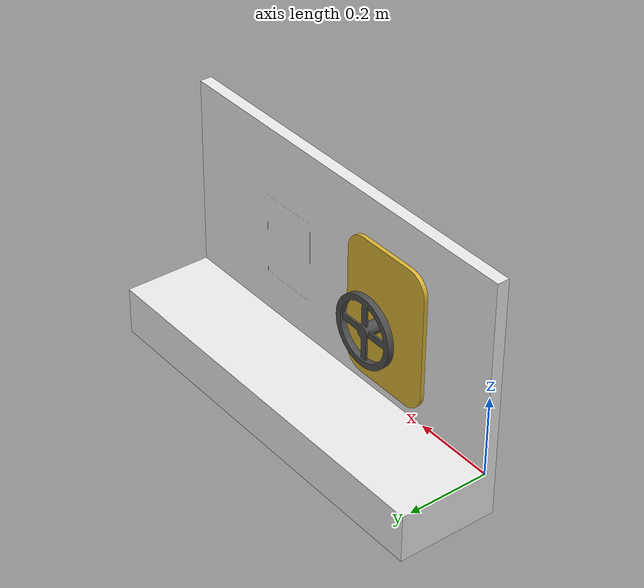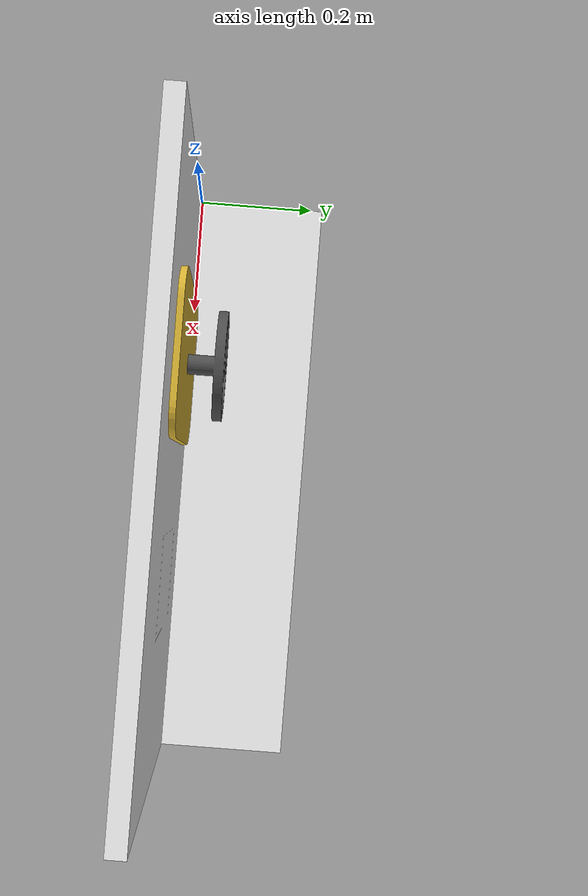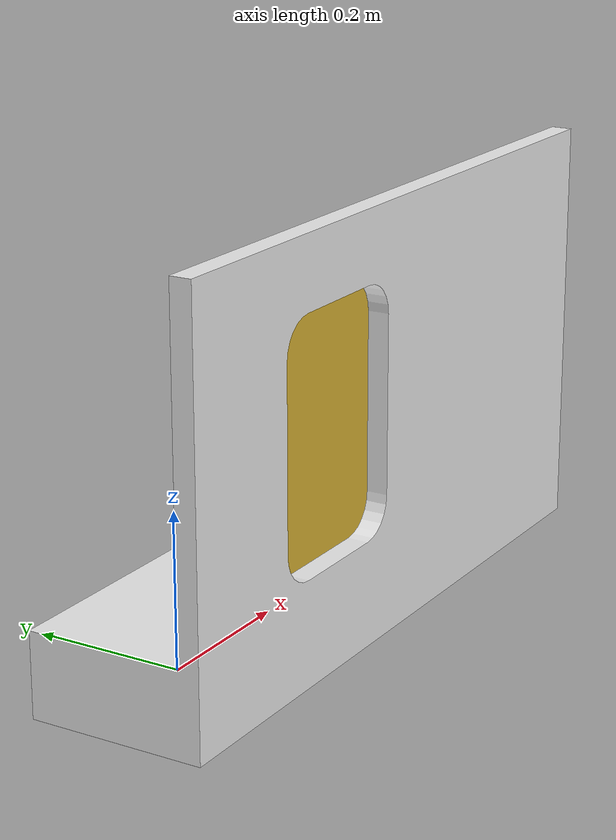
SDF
<?xml version="1.0"?>
<sdf version="1.7">
  <model name="iva_panel">

    <link name="station">
      <pose>0.0 0.0 0.0 0.0 0.0 0.0</pose>
      <inertial>
        <mass>100.0</mass>
        <pose>0.0 0.0 0.0 0.0 0.0 0.0</pose>
        <inertia>
          <ixx>1.0</ixx>
          <ixy>0.0</ixy>
          <ixz>0.0</ixz>
          <iyy>1.0</iyy>
          <iyz>0.0</iyz>
          <izz>1.0</izz>
        </inertia>
      </inertial>
      <visual name="station_visual">
        <geometry>
          <mesh>
            <uri>model://iva_panel/meshes/iva_station.stl</uri>
            <scale>0.001 0.001 0.001</scale>
          </mesh>
        </geometry>
        <material>
          <script>
            <uri>file://media/materials/scripts/gazebo.material</uri>
            <name>Gazebo/White</name>
          </script>
        </material>
      </visual>
      <collision name="station_collision">
        <geometry>
          <mesh>
            <uri>model://iva_panel/meshes/iva_station.stl</uri>
            <scale>0.001 0.001 0.001</scale>
          </mesh>
        </geometry>
      </collision>
    </link>

    <link name="airlock">
      <pose>0.325 0.0 0.205 -1.570796 0.0 0.0</pose>
      <inertial>
        <mass>2.309</mass>
        <inertia>
          <ixx>0.023</ixx>
          <ixy>0.0</ixy>
          <ixz>0.0</ixz>
          <iyy>0.012</iyy>
          <iyz>0.0</iyz>
          <izz>0.034</izz>
        </inertia>
      </inertial>
      <visual name="airlock_visual">
        <geometry>
          <mesh>
            <uri>model://iva_panel/meshes/airlock.stl</uri>
            <scale>0.001 0.001 0.001</scale>
          </mesh>
        </geometry>
        <material>
          <script>
            <uri>file://media/materials/scripts/gazebo.material</uri>
            <name>Gazebo/Gold</name>
          </script>
        </material>
      </visual>
      <collision name="airlock_collision">
        <geometry>
          <mesh>
            <uri>model://iva_panel/meshes/airlock.stl</uri>
            <scale>0.001 0.001 0.001</scale>
          </mesh>
        </geometry>
      </collision>
    </link>

    <link name="handle">
      <pose>0.325 0.0625 0.205 0.0 0.0 0.0</pose>
      <inertial>
        <mass>0.439</mass>
        <inertia>
          <ixx>0.001</ixx>
          <ixy>0.0</ixy>
          <ixz>0.0</ixz>
          <iyy>0.002</iyy>
          <iyz>0.0</iyz>
          <izz>0.001</izz>
        </inertia>
      </inertial>
      <visual name="handle_visual">
        <geometry>
          <mesh>
            <uri>model://iva_panel/meshes/wheel_handle.stl</uri>
            <scale>0.001 0.001 0.001</scale>
          </mesh>
        </geometry>
        <material>
          <script>
            <uri>file://media/materials/scripts/gazebo.material</uri>
            <name>Gazebo/DarkGrey</name>
          </script>
        </material>
      </visual>
      <collision name="handle_collision">
        <geometry>
          <mesh>
            <uri>model://iva_panel/meshes/wheel_handle.stl</uri>
            <scale>0.001 0.001 0.001</scale>
          </mesh>
        </geometry>
      </collision>
    </link>

    <joint name="fixed" type="fixed">
      <parent>world</parent>
      <child>station</child>
    </joint>

    <joint name="door_hinge" type="revolute">
      <parent>station</parent>
      <child>airlock</child>
      <pose>-0.125 0.0 0.0 0.0 0.0 0.0</pose>
      <axis>
      	<xyz>0.0 -1.0 0.0</xyz>
      	<limit>
          <lower>0.0</lower>
          <upper>1.570796</upper>
        </limit>
        <dynamics>
          <damping>0.01</damping>
          <friction>0.01</friction>
        </dynamics>
      </axis>
    </joint>

    <joint name="handle_axle" type="revolute">
      <parent>airlock</parent>
      <child>handle</child>
      <pose>0.0 0.0 0.0 0.0 0.0 0.0</pose>
      <axis>
      	<xyz>0.0 1.0 0.0</xyz>
      	<dynamics>
          <damping>0.01</damping>
          <friction>0.01</friction>
        </dynamics>
      </axis>
    </joint>

  </model>
</sdf>
